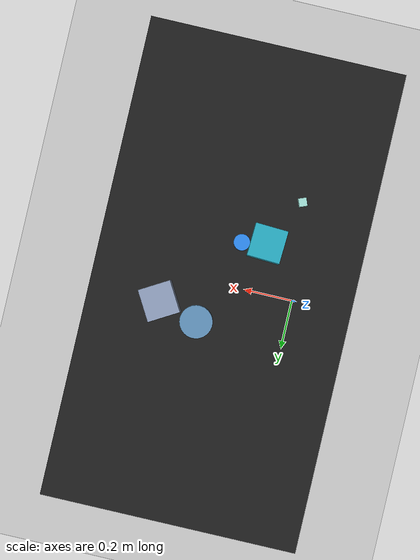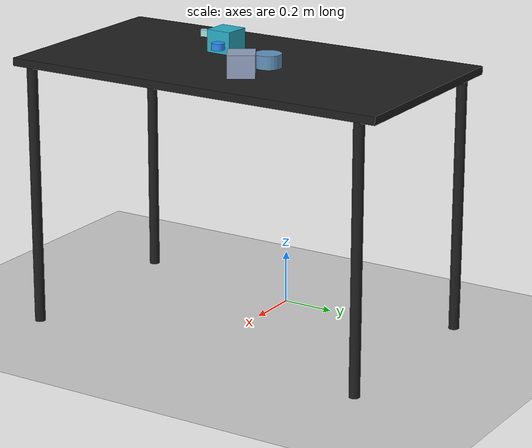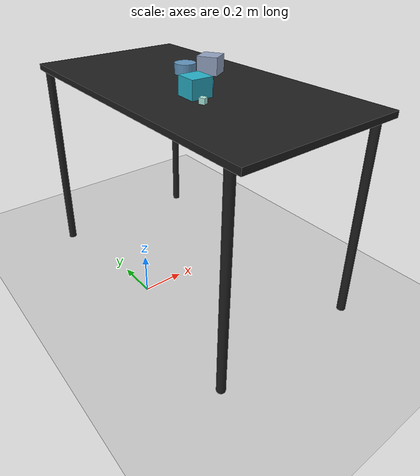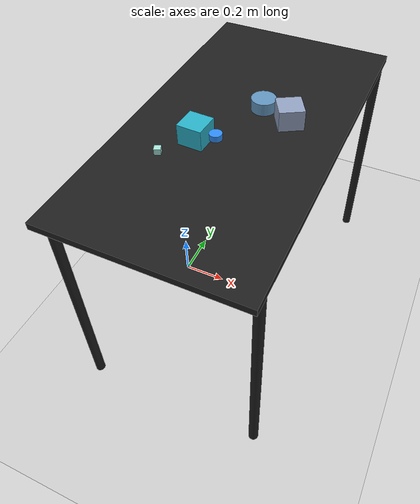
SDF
<?xml version="1.0" ?>
<sdf version="1.6">
  <world name="arm_world">
    <plugin filename="gz-sim-physics-system" name="gz::sim::systems::Physics">
      <engine>
        <filename>libgz-physics-bullet-featherstone-plugin.so</filename>
      </engine>
    </plugin>
    <plugin filename="gz-sim-user-commands-system" name="gz::sim::systems::UserCommands"/>
    <plugin filename="gz-sim-scene-broadcaster-system" name="gz::sim::systems::SceneBroadcaster"/>
    <plugin filename="gz-sim-sensors-system" name="gz::sim::systems::Sensors">
      <render_engine>ogre2</render_engine>
    </plugin>
    <gravity>0.0 0.0 -9.8</gravity>
    <scene>
      <shadows>false</shadows>
    </scene>
    <gui>
      <camera name="user_camera">
        <pose>0.75 -0.75 1.4 0 0.29 2.21</pose>
      </camera>
    </gui>
    <include>
      <uri>https://fuel.gazebosim.org/1.0/OpenRobotics/models/Sun</uri>
    </include>
    <model name="table">
      <static>true</static>
      <include>
        <uri>model://table</uri>
      </include>
      <pose>0.29 0 0 0 0 1.5708</pose>
    </model>
    <model name="ground_plane">
      <static>true</static>
      <link name="link">
        <collision name="collision">
          <geometry>
            <plane>
              <normal>0 0 1</normal>
            </plane>
          </geometry>
          <surface>
            <friction>
              <ode>
                <mu>1.0</mu>
                <mu2>1.0</mu2>
              </ode>
            </friction>
          </surface>
        </collision>
        <visual name="visual">
          <geometry>
            <plane>
              <normal>0 0 1</normal>
              <size>100 100</size>
            </plane>
          </geometry>
          <material>
            <ambient>0.8 0.8 0.8 1</ambient>
            <diffuse>0.8 0.8 0.8 1</diffuse>
            <specular>0.8 0.8 0.8 1</specular>
          </material>
        </visual>
      </link>
    </model>
    <model name="cylinder_l_0">
      <pose>0.344 0.127 1.05 0 0 2.04</pose>
      <link name="cylinder_l_0_link">
        <collision name="cylinder_l_0_collision">
          <geometry>
            <cylinder>
              <radius>0.05</radius>
              <length>0.05</length>
            </cylinder>
          </geometry>
        </collision>
        <visual name="cylinder_l_0_visual">
          <geometry>
            <cylinder>
              <radius>0.05</radius>
              <length>0.05</length>
            </cylinder>
          </geometry>
          <material>
            <ambient>0.38 0.58 0.74 1</ambient>
            <diffuse>0.38 0.58 0.74 1</diffuse>
          </material>
        </visual>
        <velocity_decay>
          <linear>1</linear>
          <angular>1</angular>
        </velocity_decay>
      </link>
    </model>
    <model name="cube_s_1">
      <pose>0.113 -0.296 1.05 0 0 0.38</pose>
      <link name="cube_s_1_link">
        <collision name="cube_s_1_collision">
          <geometry>
            <box>
              <size>0.025 0.025 0.025</size>
            </box>
          </geometry>
        </collision>
        <visual name="cube_s_1_visual">
          <geometry>
            <box>
              <size>0.025 0.025 0.025</size>
            </box>
          </geometry>
          <material>
            <ambient>0.65 0.9 0.86 1</ambient>
            <diffuse>0.65 0.9 0.86 1</diffuse>
          </material>
        </visual>
        <velocity_decay>
          <linear>1</linear>
          <angular>1</angular>
        </velocity_decay>
      </link>
    </model>
    <model name="cube_l_2">
      <pose>0.465 0.091 1.05 0 0 3.67</pose>
      <link name="cube_l_2_link">
        <collision name="cube_l_2_collision">
          <geometry>
            <box>
              <size>0.1 0.1 0.1</size>
            </box>
          </geometry>
        </collision>
        <visual name="cube_l_2_visual">
          <geometry>
            <box>
              <size>0.1 0.1 0.1</size>
            </box>
          </geometry>
          <material>
            <ambient>0.57 0.63 0.75 1</ambient>
            <diffuse>0.57 0.63 0.75 1</diffuse>
          </material>
        </visual>
        <velocity_decay>
          <linear>1</linear>
          <angular>1</angular>
        </velocity_decay>
      </link>
    </model>
    <model name="cube_l_3">
      <pose>0.189 -0.15 1.05 0 0 1.52</pose>
      <link name="cube_l_3_link">
        <collision name="cube_l_3_collision">
          <geometry>
            <box>
              <size>0.1 0.1 0.1</size>
            </box>
          </geometry>
        </collision>
        <visual name="cube_l_3_visual">
          <geometry>
            <box>
              <size>0.1 0.1 0.1</size>
            </box>
          </geometry>
          <material>
            <ambient>0.16 0.69 0.78 1</ambient>
            <diffuse>0.16 0.69 0.78 1</diffuse>
          </material>
        </visual>
        <velocity_decay>
          <linear>1</linear>
          <angular>1</angular>
        </velocity_decay>
      </link>
    </model>
    <model name="cylinder_m_4">
      <pose>0.264 -0.137 1.05 0 0 2.99</pose>
      <link name="cylinder_m_4_link">
        <collision name="cylinder_m_4_collision">
          <geometry>
            <cylinder>
              <radius>0.025</radius>
              <length>0.025</length>
            </cylinder>
          </geometry>
        </collision>
        <visual name="cylinder_m_4_visual">
          <geometry>
            <cylinder>
              <radius>0.025</radius>
              <length>0.025</length>
            </cylinder>
          </geometry>
          <material>
            <ambient>0.18 0.55 0.96 1</ambient>
            <diffuse>0.18 0.55 0.96 1</diffuse>
          </material>
        </visual>
        <velocity_decay>
          <linear>1</linear>
          <angular>1</angular>
        </velocity_decay>
      </link>
    </model>
  </world>
</sdf>

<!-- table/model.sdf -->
<sdf version="1.5">
  <model name="table">
    <static>true</static>
    <link name="link">
      <collision name="surface">
        <pose>0 0 1.0 0 0 0</pose>
        <geometry>
          <box>
            <size>1.5 0.8 0.03</size>
          </box>
        </geometry>
        <surface>
          <friction>
            <ode>
              <mu>0.6</mu>
              <mu2>0.6</mu2>
            </ode>
          </friction>
        </surface>
      </collision>
      <visual name="surface">
        <pose>0 0 1.0 0 0 0</pose>
        <geometry>
          <box>
            <size>1.5 0.8 0.03</size>
          </box>
        </geometry>
        <material>
          <script>
            <uri>file://media/materials/scripts/gazebo.material</uri>
            <name>Gazebo/Black</name>
          </script>
        </material>
      </visual>
      <collision name="front_left_leg">
        <pose>0.68 0.38 0.5 0 0 0</pose>
        <geometry>
          <cylinder>
            <radius>0.02</radius>
            <length>1.0</length>
          </cylinder>
        </geometry>
      </collision>
      <visual name="front_left_leg">
        <pose>0.68 0.38 0.5 0 0 0</pose>
        <geometry>
          <cylinder>
            <radius>0.02</radius>
            <length>1.0</length>
          </cylinder>
        </geometry>
        <material>
          <script>
            <uri>file://media/materials/scripts/gazebo.material</uri>
            <name>Gazebo/Black</name>
          </script>
        </material>
      </visual>
      <collision name="front_right_leg">
        <pose>0.68 -0.38 0.5 0 0 0</pose>
        <geometry>
          <cylinder>
            <radius>0.02</radius>
            <length>1.0</length>
          </cylinder>
        </geometry>
      </collision>
      <visual name="front_right_leg">
        <pose>0.68 -0.38 0.5 0 0 0</pose>
        <geometry>
          <cylinder>
            <radius>0.02</radius>
            <length>1.0</length>
          </cylinder>
        </geometry>
        <material>
          <script>
            <uri>file://media/materials/scripts/gazebo.material</uri>
            <name>Gazebo/Black</name>
          </script>
        </material>
      </visual>
      <collision name="back_right_leg">
        <pose>-0.68 -0.38 0.5 0 0 0</pose>
        <geometry>
          <cylinder>
            <radius>0.02</radius>
            <length>1.0</length>
          </cylinder>
        </geometry>
      </collision>
      <visual name="back_right_leg">
        <pose>-0.68 -0.38 0.5 0 0 0</pose>
        <geometry>
          <cylinder>
            <radius>0.02</radius>
            <length>1.0</length>
          </cylinder>
        </geometry>
        <material>
          <script>
            <uri>file://media/materials/scripts/gazebo.material</uri>
            <name>Gazebo/Black</name>
          </script>
        </material>
      </visual>
      <collision name="back_left_leg">
        <pose>-0.68 0.38 0.5 0 0 0</pose>
        <geometry>
          <cylinder>
            <radius>0.02</radius>
            <length>1.0</length>
          </cylinder>
        </geometry>
      </collision>
      <visual name="back_left_leg">
        <pose>-0.68 0.38 0.5 0 0 0</pose>
        <geometry>
          <cylinder>
            <radius>0.02</radius>
            <length>1.0</length>
          </cylinder>
        </geometry>
        <material>
          <script>
            <uri>file://media/materials/scripts/gazebo.material</uri>
            <name>Gazebo/Black</name>
          </script>
        </material>
      </visual>
    </link>
  </model>
</sdf>
